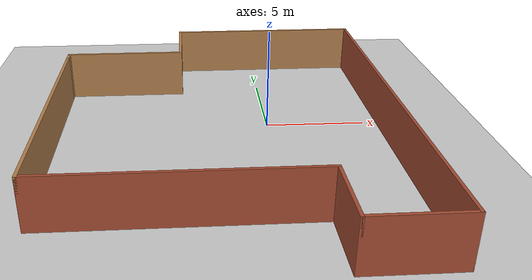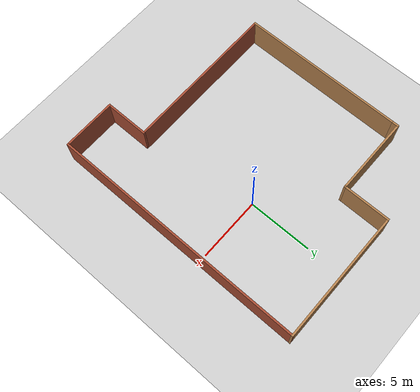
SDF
<sdf version="1.6">
 <world name="default">
  <light name="sun" type="directional">
   <pose>0 0 10 0 -0 0</pose>
   <diffuse>0.8 0.8 0.8 1</diffuse>
   <specular>0.2 0.2 0.2 1</specular>
   <attenuation>
    <range>1000</range>
    <constant>0.9</constant>
    <linear>0.01</linear>
    <quadratic>0.001</quadratic>
   </attenuation>
   <direction>-0.5 0.1 -0.9</direction>
  </light>
  <model name="ground_plane">
   <static>1</static>
   <link name="link">
    <collision name="collision">
     <geometry><plane><normal>0 0 1</normal><size>100 100</size></plane></geometry>
     <surface><friction><ode><mu>100</mu><mu2>50</mu2></ode></friction></surface>
    </collision>
    <visual name="visual">
     <cast_shadows>0</cast_shadows>
     <geometry><plane><normal>0 0 1</normal><size>100 100</size></plane></geometry>
     <material>
      <script><uri>file://media/materials/scripts/gazebo.material</uri><name>Gazebo/Grey</name></script>
     </material>
    </visual>
   </link>
  </model>
  <gravity>0 0 -9.8</gravity>
  <magnetic_field>6e-06 2.3e-05 -4.2e-05</magnetic_field>
  <atmosphere type="adiabatic"/>
  <physics name="default_physics" default="0" type="ode">
   <max_step_size>0.001</max_step_size>
   <real_time_factor>1</real_time_factor>
   <real_time_update_rate>1000</real_time_update_rate>
  </physics>
  <scene><ambient>0.4 0.4 0.4 1</ambient><background>0.7 0.7 0.7 1</background><shadows>1</shadows></scene>
  <spherical_coordinates>
   <surface_model>EARTH_WGS84</surface_model>
   <latitude_deg>0</latitude_deg>
   <longitude_deg>0</longitude_deg>
   <elevation>0</elevation>
   <heading_deg>0</heading_deg>
  </spherical_coordinates>
  <model name="world_a">
   <pose>-2.3519 -1.96996 0 0 -0 0</pose>
   <link name="Wall_20">
    <collision name="Wall_20_Collision">
     <geometry><box><size>12.75 0.15 2.5</size></box></geometry>
     <pose>0 0 1.25 0 -0 0</pose>
    </collision>
    <visual name="Wall_20_Visual">
     <pose>0 0 1.25 0 -0 0</pose>
     <geometry><box><size>12.75 0.15 2.5</size></box></geometry>
     <material>
      <script><uri>file://media/materials/scripts/gazebo.material</uri><name>Gazebo/Wood</name></script>
      <ambient>1 1 1 1</ambient>
     </material>
     <meta><layer>0</layer></meta>
    </visual>
    <pose>-8.1 -0.4 0 0 -0 -1.5708</pose>
   </link>
   <link name="Wall_21">
    <collision name="Wall_21_Collision">
     <geometry><box><size>12.25 0.15 2.5</size></box></geometry>
     <pose>0 0 1.25 0 -0 0</pose>
    </collision>
    <visual name="Wall_21_Visual">
     <pose>0 0 1.25 0 -0 0</pose>
     <geometry><box><size>12.25 0.15 2.5</size></box></geometry>
     <material>
      <script><uri>file://media/materials/scripts/gazebo.material</uri><name>Gazebo/Bricks</name></script>
      <ambient>1 1 1 1</ambient>
     </material>
     <meta><layer>0</layer></meta>
    </visual>
    <pose>-2.05 -6.7 0 0 -0 0</pose>
   </link>
   <link name="Wall_22">
    <collision name="Wall_22_Collision">
     <geometry><box><size>3.5 0.15 2.5</size></box></geometry>
     <pose>0 0 1.25 0 -0 0</pose>
    </collision>
    <visual name="Wall_22_Visual">
     <pose>0 0 1.25 0 -0 0</pose>
     <geometry><box><size>3.5 0.15 2.5</size></box></geometry>
     <material>
      <script><uri>file://media/materials/scripts/gazebo.material</uri><name>Gazebo/Bricks</name></script>
      <ambient>1 1 1 1</ambient>
     </material>
     <meta><layer>0</layer></meta>
    </visual>
    <pose>4 -8.375 0 0 -0 -1.5708</pose>
   </link>
   <link name="Wall_23">
    <collision name="Wall_23_Collision">
     <geometry><box><size>4.25 0.15 2.5</size></box></geometry>
     <pose>0 0 1.25 0 -0 0</pose>
    </collision>
    <visual name="Wall_23_Visual">
     <pose>0 0 1.25 0 -0 0</pose>
     <geometry><box><size>4.25 0.15 2.5</size></box></geometry>
     <material>
      <script><uri>file://media/materials/scripts/gazebo.material</uri><name>Gazebo/Bricks</name></script>
      <ambient>1 1 1 1</ambient>
     </material>
     <meta><layer>0</layer></meta>
    </visual>
    <pose>6.05 -10.05 0 0 -0 0</pose>
   </link>
   <link name="Wall_24">
    <collision name="Wall_24_Collision">
     <geometry><box><size>20.25 0.15 2.5</size></box></geometry>
     <pose>0 0 1.25 0 -0 0</pose>
    </collision>
    <visual name="Wall_24_Visual">
     <pose>0 0 1.25 0 -0 0</pose>
     <geometry><box><size>20.25 0.15 2.5</size></box></geometry>
     <material>
      <script><uri>file://media/materials/scripts/gazebo.material</uri><name>Gazebo/Bricks</name></script>
      <ambient>1 1 1 1</ambient>
     </material>
     <meta><layer>0</layer></meta>
    </visual>
    <pose>8.1 0 0 0 -0 1.5708</pose>
   </link>
   <link name="Wall_25">
    <collision name="Wall_25_Collision">
     <geometry><box><size>10.25 0.15 2.5</size></box></geometry>
     <pose>0 0 1.25 0 -0 0</pose>
    </collision>
    <visual name="Wall_25_Visual">
     <pose>0 0 1.25 0 -0 0</pose>
     <geometry><box><size>10.25 0.15 2.5</size></box></geometry>
     <material>
      <script><uri>file://media/materials/scripts/gazebo.material</uri><name>Gazebo/Wood</name></script>
      <ambient>1 1 1 1</ambient>
     </material>
     <meta><layer>0</layer></meta>
    </visual>
    <pose>3.05 10.05 0 0 -0 3.14159</pose>
   </link>
   <link name="Wall_26">
    <collision name="Wall_26_Collision">
     <geometry><box><size>3.75 0.15 2.5</size></box></geometry>
     <pose>0 0 1.25 0 -0 0</pose>
    </collision>
    <visual name="Wall_26_Visual">
     <pose>0 0 1.25 0 -0 0</pose>
     <geometry><box><size>3.75 0.15 2.5</size></box></geometry>
     <material>
      <script><uri>file://media/materials/scripts/gazebo.material</uri><name>Gazebo/Wood</name></script>
      <ambient>1 1 1 1</ambient>
     </material>
     <meta><layer>0</layer></meta>
    </visual>
    <pose>-2 8.25 0 0 -0 -1.5708</pose>
   </link>
   <link name="Wall_27">
    <collision name="Wall_27_Collision">
     <geometry><box><size>6.25 0.15 2.5</size></box></geometry>
     <pose>0 0 1.25 0 -0 0</pose>
    </collision>
    <visual name="Wall_27_Visual">
     <pose>0 0 1.25 0 -0 0</pose>
     <geometry><box><size>6.25 0.15 2.5</size></box></geometry>
     <material>
      <script><uri>file://media/materials/scripts/gazebo.material</uri><name>Gazebo/Wood</name></script>
      <ambient>1 1 1 1</ambient>
     </material>
     <meta><layer>0</layer></meta>
    </visual>
    <pose>-5.05 6.45 0 0 -0 3.14159</pose>
   </link>
   <link name="Wall_28">
    <collision name="Wall_28_Collision">
     <geometry><box><size>1 0.15 2.5</size></box></geometry>
     <pose>0 0 1.25 0 -0 0</pose>
    </collision>
    <visual name="Wall_28_Visual">
     <pose>0 0 1.25 0 -0 0</pose>
     <geometry><box><size>1 0.15 2.5</size></box></geometry>
     <material>
      <script><uri>file://media/materials/scripts/gazebo.material</uri><name>Gazebo/Wood</name></script>
      <ambient>1 1 1 1</ambient>
     </material>
     <meta><layer>0</layer></meta>
    </visual>
    <pose>-8.1 6.025 0 0 -0 -1.5708</pose>
   </link>
   <static>1</static>
  </model>
 </world>
</sdf>
